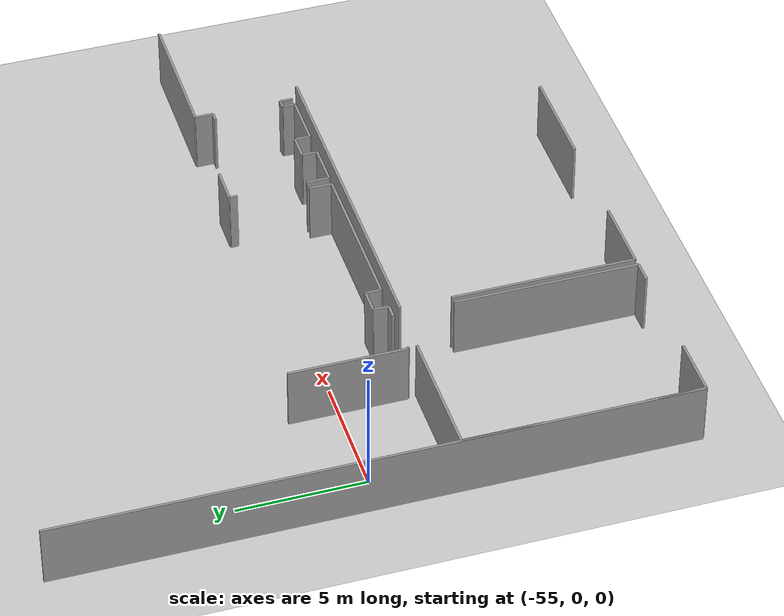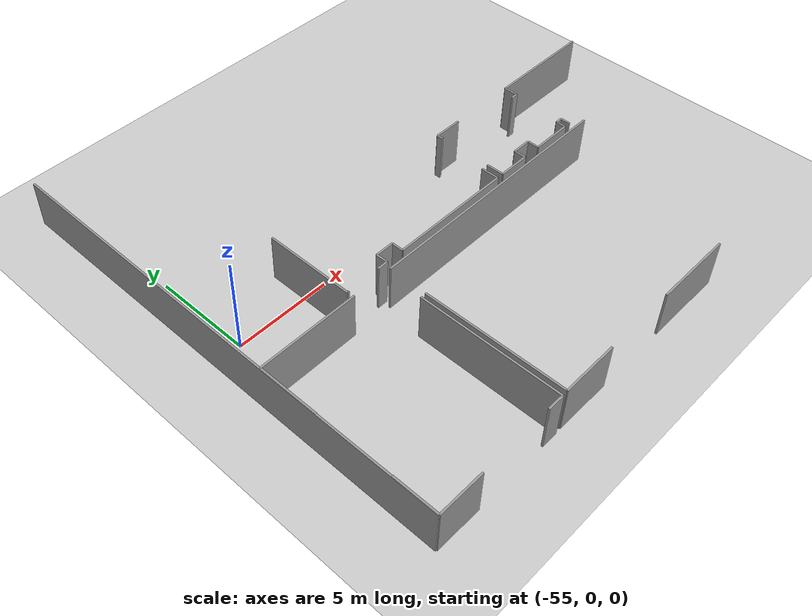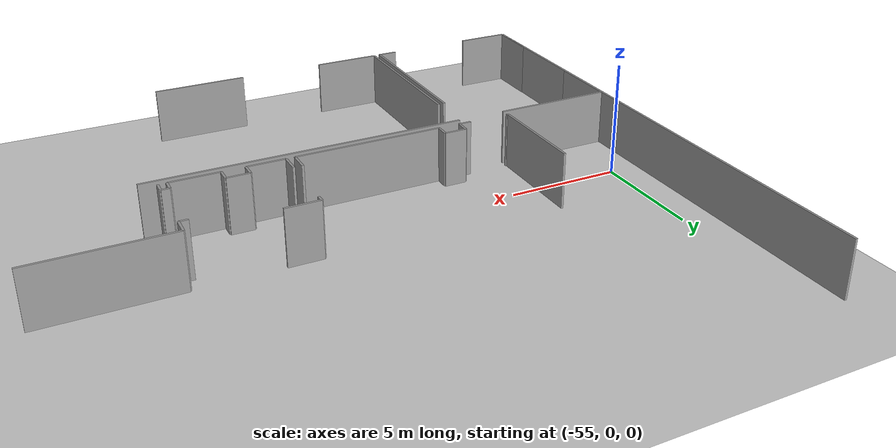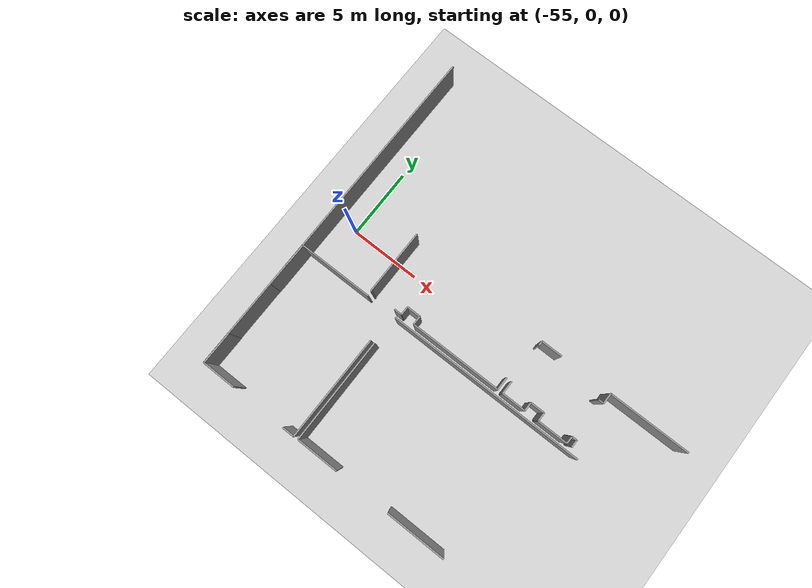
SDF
<sdf version="1.6">
 <world name="default">
  <model name="ground_plane">
   <static>1</static>
   <link name="link">
    <collision name="collision">
     <geometry><plane><normal>0 0 1</normal><size>100 100</size></plane></geometry>
     <surface><friction><ode><mu>100</mu><mu2>50</mu2></ode></friction></surface>
    </collision>
    <visual name="visual">
     <cast_shadows>0</cast_shadows>
     <geometry><plane><normal>0 0 1</normal><size>100 100</size></plane></geometry>
     <material>
      <script><uri>file://media/materials/scripts/gazebo.material</uri><name>Gazebo/Grey</name></script>
     </material>
    </visual>
   </link>
  </model>
  <model name="0510034689_Layout1">
   <static>1</static>
   <link name="Wall_0">
    <collision name="Wall_0_Collision">
     <geometry><box><size>2.3799703281 0.1 2.5</size></box></geometry>
     <pose>1.18998516405 0 1.25 0 0 0</pose>
    </collision>
    <visual name="Wall_0_Visual">
     <pose>1.18998516405 0 1.25 0 0 0</pose>
     <geometry><box><size>2.3799703281 0.1 2.5</size></box></geometry>
     <material>
      <script><uri>file://media/materials/scripts/gazebo.material</uri><name>Gazebo/Grey</name></script>
      <ambient>1 1 1 1</ambient>
     </material>
    </visual>
    <pose>0.0145948161751 -24.6896063334 0 0 0 0.0</pose>
   </link>
   <link name="Wall_1">
    <collision name="Wall_1_Collision">
     <geometry><box><size>0.864520763347 0.1 2.5</size></box></geometry>
     <pose>0.432260381673 0 1.25 0 0 0</pose>
    </collision>
    <visual name="Wall_1_Visual">
     <pose>0.432260381673 0 1.25 0 0 0</pose>
     <geometry><box><size>0.864520763347 0.1 2.5</size></box></geometry>
     <material>
      <script><uri>file://media/materials/scripts/gazebo.material</uri><name>Gazebo/Grey</name></script>
      <ambient>1 1 1 1</ambient>
     </material>
    </visual>
    <pose>6.27551713241 -24.6896063334 0 0 0 0.0</pose>
   </link>
   <link name="Wall_2">
    <collision name="Wall_2_Collision">
     <geometry><box><size>7.27925975092 0.1 2.5</size></box></geometry>
     <pose>3.63962987546 0 1.25 0 0 0</pose>
    </collision>
    <visual name="Wall_2_Visual">
     <pose>3.63962987546 0 1.25 0 0 0</pose>
     <geometry><box><size>7.27925975092 0.1 2.5</size></box></geometry>
     <material>
      <script><uri>file://media/materials/scripts/gazebo.material</uri><name>Gazebo/Grey</name></script>
      <ambient>1 1 1 1</ambient>
     </material>
    </visual>
    <pose>7.14003789576 -24.6896063334 0 0 0 1.57079632679</pose>
   </link>
   <link name="Wall_3">
    <collision name="Wall_3_Collision">
     <geometry><box><size>5.24905736524 0.1 2.5</size></box></geometry>
     <pose>2.62452868262 0 1.25 0 0 0</pose>
    </collision>
    <visual name="Wall_3_Visual">
     <pose>2.62452868262 0 1.25 0 0 0</pose>
     <geometry><box><size>5.24905736524 0.1 2.5</size></box></geometry>
     <material>
      <script><uri>file://media/materials/scripts/gazebo.material</uri><name>Gazebo/Grey</name></script>
      <ambient>1 1 1 1</ambient>
     </material>
    </visual>
    <pose>5.26720570188 -15.3767175878 0 0 0 3.14159265359</pose>
   </link>
   <link name="Wall_4">
    <collision name="Wall_4_Collision">
     <geometry><box><size>3.13852003488 0.1 2.5</size></box></geometry>
     <pose>1.56926001744 0 1.25 0 0 0</pose>
    </collision>
    <visual name="Wall_4_Visual">
     <pose>1.56926001744 0 1.25 0 0 0</pose>
     <geometry><box><size>3.13852003488 0.1 2.5</size></box></geometry>
     <material>
      <script><uri>file://media/materials/scripts/gazebo.material</uri><name>Gazebo/Grey</name></script>
      <ambient>1 1 1 1</ambient>
     </material>
    </visual>
    <pose>0.0181483366352 -15.3767175878 0 0 0 -1.57079632679</pose>
   </link>
   <link name="Wall_5">
    <collision name="Wall_5_Collision">
     <geometry><box><size>2.27197146739 0.1 2.5</size></box></geometry>
     <pose>1.13598573369 0 1.25 0 0 0</pose>
    </collision>
    <visual name="Wall_5_Visual">
     <pose>1.13598573369 0 1.25 0 0 0</pose>
     <geometry><box><size>2.27197146739 0.1 2.5</size></box></geometry>
     <material>
      <script><uri>file://media/materials/scripts/gazebo.material</uri><name>Gazebo/Grey</name></script>
      <ambient>1 1 1 1</ambient>
     </material>
    </visual>
    <pose>0.0181483366352 -22.417637645 0 0 0 -1.57236039657</pose>
   </link>
   <link name="Wall_6">
    <collision name="Wall_6_Collision">
     <geometry><box><size>2.96807796424 0.1 2.5</size></box></geometry>
     <pose>1.48403898212 0 1.25 0 0 0</pose>
    </collision>
    <visual name="Wall_6_Visual">
     <pose>1.48403898212 0 1.25 0 0 0</pose>
     <geometry><box><size>2.96807796424 0.1 2.5</size></box></geometry>
     <material>
      <script><uri>file://media/materials/scripts/gazebo.material</uri><name>Gazebo/Grey</name></script>
      <ambient>1 1 1 1</ambient>
     </material>
    </visual>
    <pose>7.45224005046 -24.6649855131 0 0 0 0.0</pose>
   </link>
   <link name="Wall_7">
    <collision name="Wall_7_Collision">
     <geometry><box><size>4.15609600089 0.1 2.5</size></box></geometry>
     <pose>2.07804800045 0 1.25 0 0 0</pose>
    </collision>
    <visual name="Wall_7_Visual">
     <pose>2.07804800045 0 1.25 0 0 0</pose>
     <geometry><box><size>4.15609600089 0.1 2.5</size></box></geometry>
     <material>
      <script><uri>file://media/materials/scripts/gazebo.material</uri><name>Gazebo/Grey</name></script>
      <ambient>1 1 1 1</ambient>
     </material>
    </visual>
    <pose>14.2784259427 -24.6649855131 0 0 0 0.0</pose>
   </link>
   <link name="Wall_19">
    <collision name="Wall_19_Collision">
     <geometry><box><size>13.8291594274 0.1 2.5</size></box></geometry>
     <pose>6.91457971371 0 1.25 0 0 0</pose>
    </collision>
    <visual name="Wall_19_Visual">
     <pose>6.91457971371 0 1.25 0 0 0</pose>
     <geometry><box><size>13.8291594274 0.1 2.5</size></box></geometry>
     <material>
      <script><uri>file://media/materials/scripts/gazebo.material</uri><name>Gazebo/Grey</name></script>
      <ambient>1 1 1 1</ambient>
     </material>
    </visual>
    <pose>21.2537327829 -15.400450028 0 0 0 3.14159265359</pose>
   </link>
   <link name="Wall_20">
    <collision name="Wall_20_Collision">
     <geometry><box><size>7.26598672262 0.1 2.5</size></box></geometry>
     <pose>3.63299336131 0 1.25 0 0 0</pose>
    </collision>
    <visual name="Wall_20_Visual">
     <pose>3.63299336131 0 1.25 0 0 0</pose>
     <geometry><box><size>7.26598672262 0.1 2.5</size></box></geometry>
     <material>
      <script><uri>file://media/materials/scripts/gazebo.material</uri><name>Gazebo/Grey</name></script>
      <ambient>1 1 1 1</ambient>
     </material>
    </visual>
    <pose>7.42457335545 -17.3990514639 0 0 0 -1.56698861796</pose>
   </link>
   <link name="Wall_31">
    <collision name="Wall_31_Collision">
     <geometry><box><size>0.915412252792 0.1 2.5</size></box></geometry>
     <pose>0.457706126396 0 1.25 0 0 0</pose>
    </collision>
    <visual name="Wall_31_Visual">
     <pose>0.457706126396 0 1.25 0 0 0</pose>
     <geometry><box><size>0.915412252792 0.1 2.5</size></box></geometry>
     <material>
      <script><uri>file://media/materials/scripts/gazebo.material</uri><name>Gazebo/Grey</name></script>
      <ambient>1 1 1 1</ambient>
     </material>
    </visual>
    <pose>15.0514435542 -14.1134410642 0 0 0 -1.57079632679</pose>
   </link>
   <link name="Wall_32">
    <collision name="Wall_32_Collision">
     <geometry><box><size>6.45674667587 0.1 2.5</size></box></geometry>
     <pose>3.22837333794 0 1.25 0 0 0</pose>
    </collision>
    <visual name="Wall_32_Visual">
     <pose>3.22837333794 0 1.25 0 0 0</pose>
     <geometry><box><size>6.45674667587 0.1 2.5</size></box></geometry>
     <material>
      <script><uri>file://media/materials/scripts/gazebo.material</uri><name>Gazebo/Grey</name></script>
      <ambient>1 1 1 1</ambient>
     </material>
    </visual>
    <pose>15.0514435542 -15.028853317 0 0 0 3.14159265359</pose>
   </link>
   <link name="Wall_33">
    <collision name="Wall_33_Collision">
     <geometry><box><size>0.605875238435 0.1 2.5</size></box></geometry>
     <pose>0.302937619217 0 1.25 0 0 0</pose>
    </collision>
    <visual name="Wall_33_Visual">
     <pose>0.302937619217 0 1.25 0 0 0</pose>
     <geometry><box><size>0.605875238435 0.1 2.5</size></box></geometry>
     <material>
      <script><uri>file://media/materials/scripts/gazebo.material</uri><name>Gazebo/Grey</name></script>
      <ambient>1 1 1 1</ambient>
     </material>
    </visual>
    <pose>8.59469687836 -15.028853317 0 0 0 1.57079632679</pose>
   </link>
   <link name="Wall_34">
    <collision name="Wall_34_Collision">
     <geometry><box><size>0.970872554258 0.1 2.5</size></box></geometry>
     <pose>0.485436277129 0 1.25 0 0 0</pose>
    </collision>
    <visual name="Wall_34_Visual">
     <pose>0.485436277129 0 1.25 0 0 0</pose>
     <geometry><box><size>0.970872554258 0.1 2.5</size></box></geometry>
     <material>
      <script><uri>file://media/materials/scripts/gazebo.material</uri><name>Gazebo/Grey</name></script>
      <ambient>1 1 1 1</ambient>
     </material>
    </visual>
    <pose>8.59469687836 -14.4229780786 0 0 0 3.14159265359</pose>
   </link>
   <link name="Wall_35">
    <collision name="Wall_35_Collision">
     <geometry><box><size>0.60574832699 0.1 2.5</size></box></geometry>
     <pose>0.302874163495 0 1.25 0 0 0</pose>
    </collision>
    <visual name="Wall_35_Visual">
     <pose>0.302874163495 0 1.25 0 0 0</pose>
     <geometry><box><size>0.60574832699 0.1 2.5</size></box></geometry>
     <material>
      <script><uri>file://media/materials/scripts/gazebo.material</uri><name>Gazebo/Grey</name></script>
      <ambient>1 1 1 1</ambient>
     </material>
    </visual>
    <pose>7.6238243241 -14.4229780786 0 0 0 -1.57079632679</pose>
   </link>
   <link name="Wall_36">
    <collision name="Wall_36_Collision">
     <geometry><box><size>0.547622885179 0.1 2.5</size></box></geometry>
     <pose>0.27381144259 0 1.25 0 0 0</pose>
    </collision>
    <visual name="Wall_36_Visual">
     <pose>0.27381144259 0 1.25 0 0 0</pose>
     <geometry><box><size>0.547622885179 0.1 2.5</size></box></geometry>
     <material>
      <script><uri>file://media/materials/scripts/gazebo.material</uri><name>Gazebo/Grey</name></script>
      <ambient>1 1 1 1</ambient>
     </material>
    </visual>
    <pose>7.6238243241 -15.0287264056 0 0 0 3.14159265359</pose>
   </link>
   <link name="Wall_37">
    <collision name="Wall_37_Collision">
     <geometry><box><size>0.0859190482657 0.1 2.5</size></box></geometry>
     <pose>0.0429595241328 0 1.25 0 0 0</pose>
    </collision>
    <visual name="Wall_37_Visual">
     <pose>0.0429595241328 0 1.25 0 0 0</pose>
     <geometry><box><size>0.0859190482657 0.1 2.5</size></box></geometry>
     <material>
      <script><uri>file://media/materials/scripts/gazebo.material</uri><name>Gazebo/Grey</name></script>
      <ambient>1 1 1 1</ambient>
     </material>
    </visual>
    <pose>5.29144578787 -15.0287264056 0 0 0 3.14159265359</pose>
   </link>
   <link name="Wall_38">
    <collision name="Wall_38_Collision">
     <geometry><box><size>4.61208882278 0.1 2.5</size></box></geometry>
     <pose>2.30604441139 0 1.25 0 0 0</pose>
    </collision>
    <visual name="Wall_38_Visual">
     <pose>2.30604441139 0 1.25 0 0 0</pose>
     <geometry><box><size>4.61208882278 0.1 2.5</size></box></geometry>
     <material>
      <script><uri>file://media/materials/scripts/gazebo.material</uri><name>Gazebo/Grey</name></script>
      <ambient>1 1 1 1</ambient>
     </material>
    </visual>
    <pose>5.20552673961 -15.0287264056 0 0 0 1.57079632679</pose>
   </link>
   <link name="Wall_78">
    <collision name="Wall_78_Collision">
     <geometry><box><size>1.49539755645 0.1 2.5</size></box></geometry>
     <pose>0.747698778224 0 1.25 0 0 0</pose>
    </collision>
    <visual name="Wall_78_Visual">
     <pose>0.747698778224 0 1.25 0 0 0</pose>
     <geometry><box><size>1.49539755645 0.1 2.5</size></box></geometry>
     <material>
      <script><uri>file://media/materials/scripts/gazebo.material</uri><name>Gazebo/Grey</name></script>
      <ambient>1 1 1 1</ambient>
     </material>
    </visual>
    <pose>15.4160601357 -11.0374883717 0 0 0 0.0</pose>
   </link>
   <link name="Wall_81">
    <collision name="Wall_81_Collision">
     <geometry><box><size>0.368043190503 0.1 2.5</size></box></geometry>
     <pose>0.184021595251 0 1.25 0 0 0</pose>
    </collision>
    <visual name="Wall_81_Visual">
     <pose>0.184021595251 0 1.25 0 0 0</pose>
     <geometry><box><size>0.368043190503 0.1 2.5</size></box></geometry>
     <material>
      <script><uri>file://media/materials/scripts/gazebo.material</uri><name>Gazebo/Grey</name></script>
      <ambient>1 1 1 1</ambient>
     </material>
    </visual>
    <pose>20.1922454569 -11.7748438672 0 0 0 0.0</pose>
   </link>
   <link name="Wall_82">
    <collision name="Wall_82_Collision">
     <geometry><box><size>0.728725517196 0.1 2.5</size></box></geometry>
     <pose>0.364362758598 0 1.25 0 0 0</pose>
    </collision>
    <visual name="Wall_82_Visual">
     <pose>0.364362758598 0 1.25 0 0 0</pose>
     <geometry><box><size>0.728725517196 0.1 2.5</size></box></geometry>
     <material>
      <script><uri>file://media/materials/scripts/gazebo.material</uri><name>Gazebo/Grey</name></script>
      <ambient>1 1 1 1</ambient>
     </material>
    </visual>
    <pose>20.5602886474 -11.7748438672 0 0 0 1.57079632679</pose>
   </link>
   <link name="Wall_83">
    <collision name="Wall_83_Collision">
     <geometry><box><size>5.65085900012 0.1 2.5</size></box></geometry>
     <pose>2.82542950006 0 1.25 0 0 0</pose>
    </collision>
    <visual name="Wall_83_Visual">
     <pose>2.82542950006 0 1.25 0 0 0</pose>
     <geometry><box><size>5.65085900012 0.1 2.5</size></box></geometry>
     <material>
      <script><uri>file://media/materials/scripts/gazebo.material</uri><name>Gazebo/Grey</name></script>
      <ambient>1 1 1 1</ambient>
     </material>
    </visual>
    <pose>20.5602886474 -11.04611835 0 0 0 0.0</pose>
   </link>
   <link name="Wall_105">
    <collision name="Wall_105_Collision">
     <geometry><box><size>0.501807853534 0.1 2.5</size></box></geometry>
     <pose>0.250903926767 0 1.25 0 0 0</pose>
    </collision>
    <visual name="Wall_105_Visual">
     <pose>0.250903926767 0 1.25 0 0 0</pose>
     <geometry><box><size>0.501807853534 0.1 2.5</size></box></geometry>
     <material>
      <script><uri>file://media/materials/scripts/gazebo.material</uri><name>Gazebo/Grey</name></script>
      <ambient>1 1 1 1</ambient>
     </material>
    </visual>
    <pose>20.5540699866 -15.0330413947 0 0 0 1.57079632679</pose>
   </link>
   <link name="Wall_106">
    <collision name="Wall_106_Collision">
     <geometry><box><size>0.351290879763 0.1 2.5</size></box></geometry>
     <pose>0.175645439881 0 1.25 0 0 0</pose>
    </collision>
    <visual name="Wall_106_Visual">
     <pose>0.175645439881 0 1.25 0 0 0</pose>
     <geometry><box><size>0.351290879763 0.1 2.5</size></box></geometry>
     <material>
      <script><uri>file://media/materials/scripts/gazebo.material</uri><name>Gazebo/Grey</name></script>
      <ambient>1 1 1 1</ambient>
     </material>
    </visual>
    <pose>20.5540699866 -14.5312335412 0 0 0 3.14159265359</pose>
   </link>
   <link name="Wall_107">
    <collision name="Wall_107_Collision">
     <geometry><box><size>0.498761978854 0.1 2.5</size></box></geometry>
     <pose>0.249380989427 0 1.25 0 0 0</pose>
    </collision>
    <visual name="Wall_107_Visual">
     <pose>0.249380989427 0 1.25 0 0 0</pose>
     <geometry><box><size>0.498761978854 0.1 2.5</size></box></geometry>
     <material>
      <script><uri>file://media/materials/scripts/gazebo.material</uri><name>Gazebo/Grey</name></script>
      <ambient>1 1 1 1</ambient>
     </material>
    </visual>
    <pose>20.2027791068 -14.5312335412 0 0 0 -1.57079632679</pose>
   </link>
   <link name="Wall_108">
    <collision name="Wall_108_Collision">
     <geometry><box><size>2.12297465198 0.1 2.5</size></box></geometry>
     <pose>1.06148732599 0 1.25 0 0 0</pose>
    </collision>
    <visual name="Wall_108_Visual">
     <pose>1.06148732599 0 1.25 0 0 0</pose>
     <geometry><box><size>2.12297465198 0.1 2.5</size></box></geometry>
     <material>
      <script><uri>file://media/materials/scripts/gazebo.material</uri><name>Gazebo/Grey</name></script>
      <ambient>1 1 1 1</ambient>
     </material>
    </visual>
    <pose>20.2027791068 -15.02999552 0 0 0 3.14159265359</pose>
   </link>
   <link name="Wall_109">
    <collision name="Wall_109_Collision">
     <geometry><box><size>0.60244862942 0.1 2.5</size></box></geometry>
     <pose>0.30122431471 0 1.25 0 0 0</pose>
    </collision>
    <visual name="Wall_109_Visual">
     <pose>0.30122431471 0 1.25 0 0 0</pose>
     <geometry><box><size>0.60244862942 0.1 2.5</size></box></geometry>
     <material>
      <script><uri>file://media/materials/scripts/gazebo.material</uri><name>Gazebo/Grey</name></script>
      <ambient>1 1 1 1</ambient>
     </material>
    </visual>
    <pose>18.0798044548 -15.02999552 0 0 0 1.57079632679</pose>
   </link>
   <link name="Wall_110">
    <collision name="Wall_110_Collision">
     <geometry><box><size>0.993082057133 0.1 2.5</size></box></geometry>
     <pose>0.496541028566 0 1.25 0 0 0</pose>
    </collision>
    <visual name="Wall_110_Visual">
     <pose>0.496541028566 0 1.25 0 0 0</pose>
     <geometry><box><size>0.993082057133 0.1 2.5</size></box></geometry>
     <material>
      <script><uri>file://media/materials/scripts/gazebo.material</uri><name>Gazebo/Grey</name></script>
      <ambient>1 1 1 1</ambient>
     </material>
    </visual>
    <pose>18.0798044548 -14.4275468906 0 0 0 3.14159265359</pose>
   </link>
   <link name="Wall_111">
    <collision name="Wall_111_Collision">
     <geometry><box><size>0.60346392098 0.1 2.5</size></box></geometry>
     <pose>0.30173196049 0 1.25 0 0 0</pose>
    </collision>
    <visual name="Wall_111_Visual">
     <pose>0.30173196049 0 1.25 0 0 0</pose>
     <geometry><box><size>0.60346392098 0.1 2.5</size></box></geometry>
     <material>
      <script><uri>file://media/materials/scripts/gazebo.material</uri><name>Gazebo/Grey</name></script>
      <ambient>1 1 1 1</ambient>
     </material>
    </visual>
    <pose>17.0867223977 -14.4275468906 0 0 0 -1.57079632679</pose>
   </link>
   <link name="Wall_112">
    <collision name="Wall_112_Collision">
     <geometry><box><size>1.66241301807 0.1 2.5</size></box></geometry>
     <pose>0.831206509034 0 1.25 0 0 0</pose>
    </collision>
    <visual name="Wall_112_Visual">
     <pose>0.831206509034 0 1.25 0 0 0</pose>
     <geometry><box><size>1.66241301807 0.1 2.5</size></box></geometry>
     <material>
      <script><uri>file://media/materials/scripts/gazebo.material</uri><name>Gazebo/Grey</name></script>
      <ambient>1 1 1 1</ambient>
     </material>
    </visual>
    <pose>17.0867223977 -15.0310108116 0 0 0 3.14159265359</pose>
   </link>
   <link name="Wall_113">
    <collision name="Wall_113_Collision">
     <geometry><box><size>0.906782274532 0.1 2.5</size></box></geometry>
     <pose>0.453391137266 0 1.25 0 0 0</pose>
    </collision>
    <visual name="Wall_113_Visual">
     <pose>0.453391137266 0 1.25 0 0 0</pose>
     <geometry><box><size>0.906782274532 0.1 2.5</size></box></geometry>
     <material>
      <script><uri>file://media/materials/scripts/gazebo.material</uri><name>Gazebo/Grey</name></script>
      <ambient>1 1 1 1</ambient>
     </material>
    </visual>
    <pose>15.4243093796 -15.0310108116 0 0 0 1.57079632679</pose>
   </link>
   <link name="Wall_114">
    <collision name="Wall_114_Collision">
     <geometry><box><size>0.312057385341 0.1 2.5</size></box></geometry>
     <pose>0.156028692671 0 1.25 0 0 0</pose>
    </collision>
    <visual name="Wall_114_Visual">
     <pose>0.156028692671 0 1.25 0 0 0</pose>
     <geometry><box><size>0.312057385341 0.1 2.5</size></box></geometry>
     <material>
      <script><uri>file://media/materials/scripts/gazebo.material</uri><name>Gazebo/Grey</name></script>
      <ambient>1 1 1 1</ambient>
     </material>
    </visual>
    <pose>15.4243093796 -11.3494367036 0 0 0 1.59723442886</pose>
   </link>
   <link name="Wall_390">
    <collision name="Wall_390_Collision">
     <geometry><box><size>24.6896063334 0.1 2.5</size></box></geometry>
     <pose>12.3448031667 0 1.25 0 0 0</pose>
    </collision>
    <visual name="Wall_390_Visual">
     <pose>12.3448031667 0 1.25 0 0 0</pose>
     <geometry><box><size>24.6896063334 0.1 2.5</size></box></geometry>
     <material>
      <script><uri>file://media/materials/scripts/gazebo.material</uri><name>Gazebo/Grey</name></script>
      <ambient>1 1 1 1</ambient>
     </material>
    </visual>
    <pose>0.0 -24.6896063334 0 0 0 1.57079632679</pose>
   </link>
   <pose>-56.4 12.3396063334 0 0 0 0</pose>
  </model>
 </world>
</sdf>
